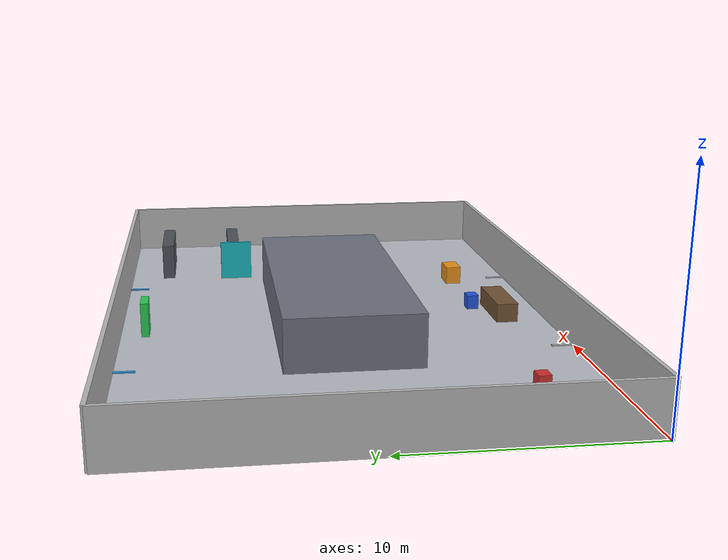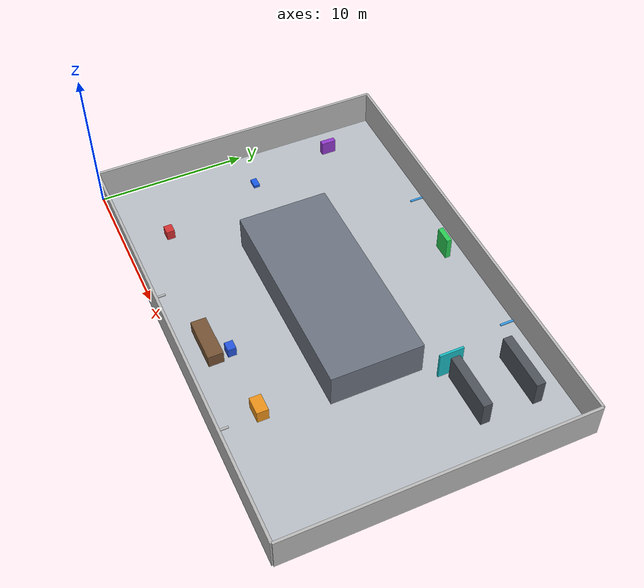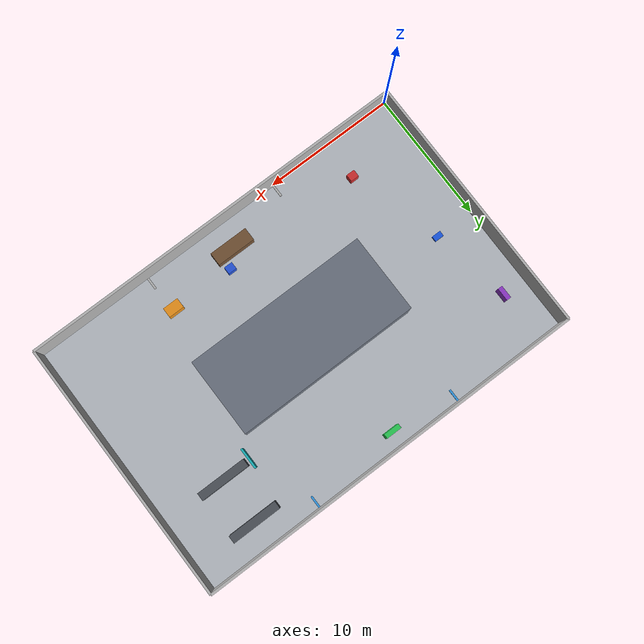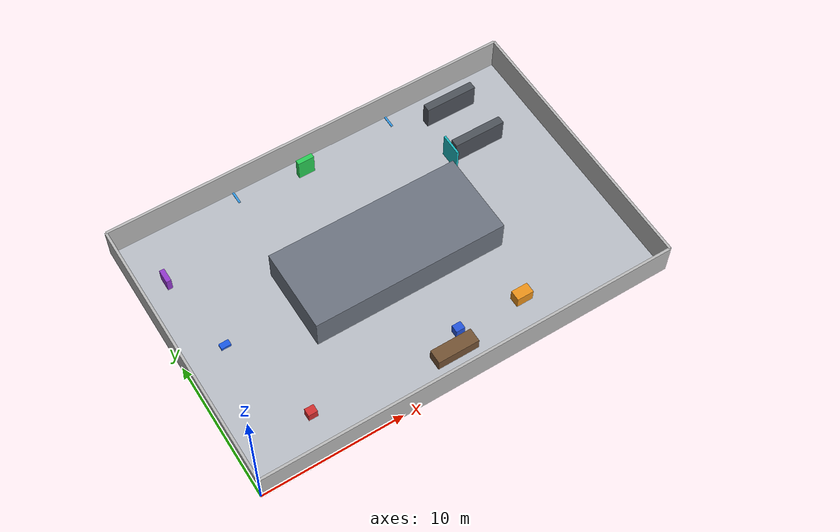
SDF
<?xml version="1.0"?>
<sdf version="1.9">
  <world name="dynamic_indoor_benchmark">
    <physics name="fast" type="ignored"><max_step_size>0.004</max_step_size><real_time_factor>1.0</real_time_factor></physics>
    <plugin filename="libignition-gazebo-physics-system.so" name="ignition::gazebo::systems::Physics"/>
    <plugin filename="libignition-gazebo-user-commands-system.so" name="ignition::gazebo::systems::UserCommands"/>
    <plugin filename="libignition-gazebo-scene-broadcaster-system.so" name="ignition::gazebo::systems::SceneBroadcaster"/>
    <plugin filename="libignition-gazebo-sensors-system.so" name="ignition::gazebo::systems::Sensors"><render_engine>ogre2</render_engine></plugin>
    <scene><ambient>0.82 0.82 0.82 1</ambient><background>0.92 0.94 0.97 1</background></scene>
    <light type="directional" name="ceiling_light"><pose>15 10 12 0 0 0</pose><diffuse>1 1 1 1</diffuse><direction>-0.25 0.15 -1</direction></light>

    <model name="floor"><static>true</static><pose>15 10 0 0 0 0</pose><link name="link">
      <collision name="c"><geometry><box><size>30 20 0.05</size></box></geometry></collision>
      <visual name="v"><geometry><box><size>30 20 0.05</size></box></geometry><material><ambient>0.72 0.74 0.77 1</ambient><diffuse>0.72 0.74 0.77 1</diffuse></material></visual>
    </link></model>
    <model name="central_service_block"><static>true</static><pose>15 10 1.2 0 0 0</pose><link name="link">
      <collision name="c"><geometry><box><size>14 6 2.4</size></box></geometry></collision>
      <visual name="v"><geometry><box><size>14 6 2.4</size></box></geometry><material><ambient>0.42 0.45 0.50 1</ambient><diffuse>0.42 0.45 0.50 1</diffuse></material></visual>
    </link></model>

    <!-- Outer walls, with broad west/east turning junctions. -->
    <model name="wall_s"><static>true</static><pose>15 0 1.2 0 0 0</pose><link name="l"><collision name="c"><geometry><box><size>30 .18 2.4</size></box></geometry></collision><visual name="v"><geometry><box><size>30 .18 2.4</size></box></geometry></visual></link></model>
    <model name="wall_n"><static>true</static><pose>15 20 1.2 0 0 0</pose><link name="l"><collision name="c"><geometry><box><size>30 .18 2.4</size></box></geometry></collision><visual name="v"><geometry><box><size>30 .18 2.4</size></box></geometry></visual></link></model>
    <model name="wall_w"><static>true</static><pose>0 10 1.2 0 0 0</pose><link name="l"><collision name="c"><geometry><box><size>.18 20 2.4</size></box></geometry></collision><visual name="v"><geometry><box><size>.18 20 2.4</size></box></geometry></visual></link></model>
    <model name="wall_e"><static>true</static><pose>30 10 1.2 0 0 0</pose><link name="l"><collision name="c"><geometry><box><size>.18 20 2.4</size></box></geometry></collision><visual name="v"><geometry><box><size>.18 20 2.4</size></box></geometry></visual></link></model>

    <!-- Zone dividers are short enough to retain manoeuvring space. -->
    <model name="office_zone_marker"><static>true</static><pose>9 19.5 .04 0 0 0</pose><link name="l"><visual name="v"><geometry><box><size>.15 1 .08</size></box></geometry><material><ambient>.2 .6 .9 1</ambient><diffuse>.2 .6 .9 1</diffuse></material></visual></link></model>
    <model name="storage_zone_marker"><static>true</static><pose>21 19.5 .04 0 0 0</pose><link name="l"><visual name="v"><geometry><box><size>.15 1 .08</size></box></geometry><material><ambient>.2 .6 .9 1</ambient><diffuse>.2 .6 .9 1</diffuse></material></visual></link></model>
    <model name="receiving_zone_marker"><static>true</static><pose>10 .5 .04 0 0 0</pose><link name="l"><visual name="v"><geometry><box><size>.15 1 .08</size></box></geometry></visual></link></model>
    <model name="loading_zone_marker"><static>true</static><pose>21 .5 .04 0 0 0</pose><link name="l"><visual name="v"><geometry><box><size>.15 1 .08</size></box></geometry></visual></link></model>

    <!-- Static shelves make the RGB-D and lidar views less toy-like. -->
    <model name="rack_a"><static>true</static><pose>25 18 0.9 0 0 0</pose><link name="l"><collision name="c"><geometry><box><size>3.8 .6 1.8</size></box></geometry></collision><visual name="v"><geometry><box><size>3.8 .6 1.8</size></box></geometry><material><ambient>.30 .32 .35 1</ambient><diffuse>.30 .32 .35 1</diffuse></material></visual></link></model>
    <model name="rack_b"><static>true</static><pose>25 14.5 0.9 0 0 0</pose><link name="l"><collision name="c"><geometry><box><size>3.8 .6 1.8</size></box></geometry></collision><visual name="v"><geometry><box><size>3.8 .6 1.8</size></box></geometry><material><ambient>.30 .32 .35 1</ambient><diffuse>.30 .32 .35 1</diffuse></material></visual></link></model>
    <model name="packing_table"><static>true</static><pose>15 2 0.45 0 0 0</pose><link name="l"><collision name="c"><geometry><box><size>3 1 0.9</size></box></geometry></collision><visual name="v"><geometry><box><size>3 1 0.9</size></box></geometry><material><ambient>.45 .32 .2 1</ambient><diffuse>.45 .32 .2 1</diffuse></material></visual></link></model>

    <!-- Coloured semantic assets: consumed through rendered RGB-D only. -->
    <model name="parcel_red"><static>true</static><pose>5.2 3.0 .35 0 0 0</pose><link name="l"><collision name="c"><geometry><box><size>.65 .55 .7</size></box></geometry></collision><visual name="v"><geometry><box><size>.65 .55 .7</size></box></geometry><material><ambient>.82 .18 .18 1</ambient><diffuse>.82 .18 .18 1</diffuse></material></visual></link></model>
    <model name="parcel_blue"><static>true</static><pose>16.0 3.1 .35 0 0 0</pose><link name="l"><collision name="c"><geometry><box><size>.65 .55 .7</size></box></geometry></collision><visual name="v"><geometry><box><size>.65 .55 .7</size></box></geometry><material><ambient>.14 .33 .86 1</ambient><diffuse>.14 .33 .86 1</diffuse></material></visual></link></model>
    <model name="mobile_cart"><static>true</static><pose>20.8 3 .45 0 0 0</pose><link name="l"><collision name="c"><geometry><box><size>1.2 .75 .9</size></box></geometry></collision><visual name="v"><geometry><box><size>1.2 .75 .9</size></box></geometry><material><ambient>.92 .57 .10 1</ambient><diffuse>.92 .57 .10 1</diffuse></material></visual></link></model>
    <model name="inspection_panel"><static>true</static><pose>14 18.8 .8 0 0 0</pose><link name="l"><collision name="c"><geometry><box><size>1.2 .35 1.6</size></box></geometry></collision><visual name="v"><geometry><box><size>1.2 .35 1.6</size></box></geometry><material><ambient>.16 .80 .33 1</ambient><diffuse>.16 .80 .33 1</diffuse></material></visual></link></model>
    <model name="charging_station"><static>true</static><pose>2 16 .5 0 0 1.5708</pose><link name="l"><collision name="c"><geometry><box><size>1.0 .35 1.0</size></box></geometry></collision><visual name="v"><geometry><box><size>1.0 .35 1.0</size></box></geometry><material><ambient>.57 .22 .80 1</ambient><diffuse>.57 .22 .80 1</diffuse></material></visual></link></model>
    <model name="dynamic_door"><static>true</static><pose>22.8 14.4 1 0 0 1.5708</pose><link name="l"><collision name="c"><geometry><box><size>1.6 .15 2</size></box></geometry></collision><visual name="v"><geometry><box><size>1.6 .15 2</size></box></geometry><material><ambient>.10 .73 .76 1</ambient><diffuse>.10 .73 .76 1</diffuse></material></visual></link></model>

    <model name="rangermini_2_0" xmlns:ignition="http://ignitionrobotics.org/schema">
      <pose>3 10 .01 0 0 0</pose><link name="base_link"><pose>0 0 .12 0 0 0</pose><gravity>false</gravity>
        <inertial><mass>63</mass><inertia><ixx>1.35</ixx><iyy>2.10</iyy><izz>2.70</izz></inertia></inertial>
        <collision name="body"><geometry><box><size>.738 .500 .20</size></box></geometry></collision>
        <visual name="body"><geometry><box><size>.70 .42 .20</size></box></geometry><material><ambient>.1 .35 .9 1</ambient><diffuse>.1 .35 .9 1</diffuse></material></visual>
        <sensor name="mid360s_proxy" type="gpu_lidar"><pose>.30 0 .58 0 0 0</pose><topic>/scan</topic><update_rate>10</update_rate><lidar><scan><horizontal><samples>720</samples><resolution>1</resolution><min_angle>-3.14159</min_angle><max_angle>3.14159</max_angle></horizontal></scan><range><min>.20</min><max>30</max><resolution>.02</resolution></range></lidar></sensor>
        <sensor name="d435i_proxy" type="rgbd_camera"><pose>.34 0 .48 0 0 0</pose><topic>/camera</topic><update_rate>15</update_rate><camera><horizontal_fov>1.396</horizontal_fov><image><width>640</width><height>480</height><format>R8G8B8</format></image><clip><near>.15</near><far>12</far></clip></camera></sensor>
      </link>
      <plugin filename="libignition-gazebo-velocity-control-system.so" name="ignition::gazebo::systems::VelocityControl"><topic>/model/rangermini_2_0/cmd_vel</topic></plugin>
      <plugin filename="libignition-gazebo-pose-publisher-system.so" name="ignition::gazebo::systems::PosePublisher"><publish_model_pose>true</publish_model_pose><use_pose_vector_msg>false</use_pose_vector_msg><update_frequency>50</update_frequency></plugin>
    </model>
  </world>
</sdf>
